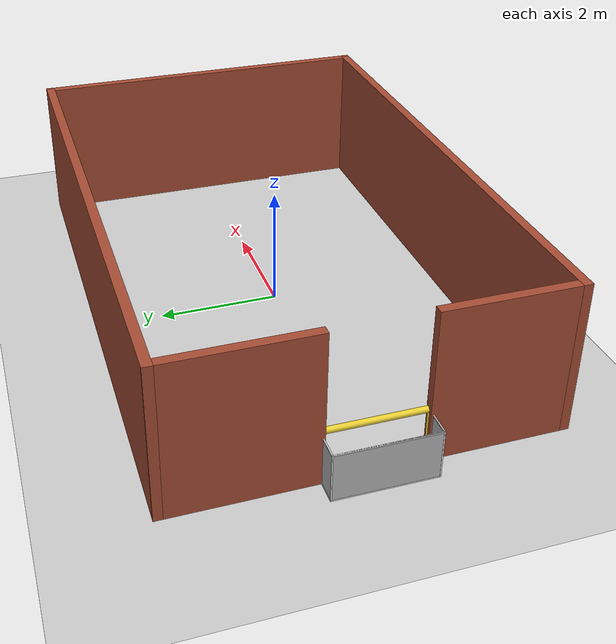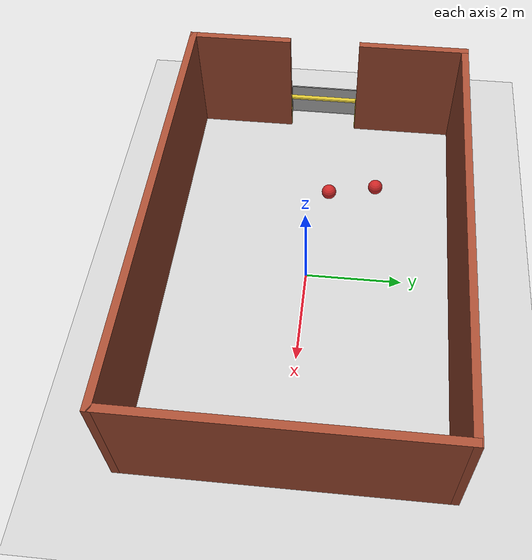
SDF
<sdf version="1.6">
 <world name="default">
  <model name="ground_plane">
   <static>1</static>
   <link name="link">
    <collision name="collision">
     <geometry><plane><normal>0 0 1</normal><size>100 100</size></plane></geometry>
     <surface><friction><ode><mu>100</mu><mu2>50</mu2></ode></friction></surface>
    </collision>
    <visual name="visual">
     <cast_shadows>0</cast_shadows>
     <geometry><plane><normal>0 0 1</normal><size>100 100</size></plane></geometry>
     <material>
      <script><uri>file://media/materials/scripts/gazebo.material</uri><name>Gazebo/Grey</name></script>
     </material>
    </visual>
   </link>
  </model>
  <gravity>0 0 -9.8</gravity>
  <magnetic_field>6e-06 2.3e-05 -4.2e-05</magnetic_field>
  <atmosphere type="adiabatic"/>
  <physics name="default_physics" default="0" type="ode">
   <max_step_size>0.001</max_step_size>
   <real_time_factor>1</real_time_factor>
   <real_time_update_rate>1000</real_time_update_rate>
  </physics>
  <scene><ambient>0.4 0.4 0.4 1</ambient><background>0.7 0.7 0.7 1</background><shadows>0</shadows></scene>
  <spherical_coordinates>
   <surface_model>EARTH_WGS84</surface_model>
   <latitude_deg>0</latitude_deg>
   <longitude_deg>0</longitude_deg>
   <elevation>0</elevation>
   <heading_deg>0</heading_deg>
  </spherical_coordinates>
  <model name="RoboCup 2014 SPL Goal">
   <static>1</static>
   <link name="left_post">
    <pose>0 0.8 0.45 0 -0 0</pose>
    <collision name="collision">
     <geometry><cylinder><radius>0.05</radius><length>0.9</length></cylinder></geometry>
    </collision>
    <visual name="visual">
     <geometry><cylinder><radius>0.05</radius><length>0.9</length></cylinder></geometry>
     <material>
      <script><uri>file://media/materials/scripts/gazebo.material</uri><name>Gazebo/ZincYellow</name></script>
     </material>
    </visual>
   </link>
   <link name="left_support_horiz_lower">
    <pose>0.24 0.8 0.01 0 -0 0</pose>
    <collision name="collision"><geometry><box><size>0.38 0.02 0.02</size></box></geometry></collision>
    <visual name="visual">
     <geometry><box><size>0.38 0.02 0.02</size></box></geometry>
     <material>
      <script><uri>file://media/materials/scripts/gazebo.material</uri><name>Gazebo/White</name></script>
     </material>
    </visual>
   </link>
   <link name="left_support_horiz_upper">
    <pose>0.24 0.8 0.79 0 -0 0</pose>
    <collision name="collision"><geometry><box><size>0.38 0.02 0.02</size></box></geometry></collision>
    <visual name="visual">
     <geometry><box><size>0.38 0.02 0.02</size></box></geometry>
     <material>
      <script><uri>file://media/materials/scripts/gazebo.material</uri><name>Gazebo/White</name></script>
     </material>
    </visual>
   </link>
   <link name="left_support_vertical">
    <pose>0.44 0.8 0.4 3.14159 1.57079 3.14159</pose>
    <collision name="collision"><geometry><box><size>0.8 0.02 0.02</size></box></geometry></collision>
    <visual name="visual">
     <geometry><box><size>0.8 0.02 0.02</size></box></geometry>
     <material>
      <script><uri>file://media/materials/scripts/gazebo.material</uri><name>Gazebo/White</name></script>
     </material>
    </visual>
   </link>
   <link name="right_support_horiz_lower">
    <pose>0.24 -0.8 0.01 0 -0 0</pose>
    <collision name="collision"><geometry><box><size>0.38 0.02 0.02</size></box></geometry></collision>
    <visual name="visual">
     <geometry><box><size>0.38 0.02 0.02</size></box></geometry>
     <material>
      <script><uri>file://media/materials/scripts/gazebo.material</uri><name>Gazebo/White</name></script>
     </material>
    </visual>
   </link>
   <link name="right_support_horiz_upper">
    <pose>0.24 -0.8 0.79 0 -0 0</pose>
    <collision name="collision"><geometry><box><size>0.38 0.02 0.02</size></box></geometry></collision>
    <visual name="visual">
     <geometry><box><size>0.38 0.02 0.02</size></box></geometry>
     <material>
      <script><uri>file://media/materials/scripts/gazebo.material</uri><name>Gazebo/White</name></script>
     </material>
    </visual>
   </link>
   <link name="right_support_vertical">
    <pose>0.44 -0.8 0.4 3.14159 1.57079 3.14159</pose>
    <collision name="collision"><geometry><box><size>0.8 0.02 0.02</size></box></geometry></collision>
    <visual name="visual">
     <geometry><box><size>0.8 0.02 0.02</size></box></geometry>
     <material>
      <script><uri>file://media/materials/scripts/gazebo.material</uri><name>Gazebo/White</name></script>
     </material>
    </visual>
   </link>
   <link name="center_support_horiz_lower">
    <pose>0.44 0 0.01 3.14159 1.57079 3.14159</pose>
    <collision name="collision">
     <geometry><box><size>0.02 1.58 0.02</size></box></geometry>
     <surface>
      <contact>
       <ode><soft_cfm>100000</soft_cfm><soft_erp>100000</soft_erp><kp>1e+06</kp><kd>100000</kd></ode>
      </contact>
     </surface>
    </collision>
    <visual name="visual">
     <geometry><box><size>0.02 1.58 0.02</size></box></geometry>
     <material>
      <script><uri>file://media/materials/scripts/gazebo.material</uri><name>Gazebo/White</name></script>
     </material>
    </visual>
   </link>
   <link name="center_support_horiz_upper">
    <pose>0.44 0 0.79 3.14159 1.57079 3.14159</pose>
    <collision name="collision"><geometry><box><size>0.02 1.58 0.02</size></box></geometry></collision>
    <visual name="visual">
     <geometry><box><size>0.02 1.58 0.02</size></box></geometry>
     <material>
      <script><uri>file://media/materials/scripts/gazebo.material</uri><name>Gazebo/White</name></script>
     </material>
    </visual>
   </link>
   <link name="right_post">
    <pose>0 -0.8 0.45 0 -0 0</pose>
    <collision name="collision">
     <geometry><cylinder><radius>0.05</radius><length>0.9</length></cylinder></geometry>
    </collision>
    <visual name="visual">
     <geometry><cylinder><radius>0.05</radius><length>0.9</length></cylinder></geometry>
     <material>
      <script><uri>file://media/materials/scripts/gazebo.material</uri><name>Gazebo/ZincYellow</name></script>
     </material>
    </visual>
   </link>
   <link name="crossbar">
    <pose>0 0 0.85 1.57 1.57 0</pose>
    <collision name="collision">
     <geometry><cylinder><radius>0.05</radius><length>1.5</length></cylinder></geometry>
    </collision>
    <visual name="visual">
     <geometry><cylinder><radius>0.05</radius><length>1.5</length></cylinder></geometry>
     <material>
      <script><uri>file://media/materials/scripts/gazebo.material</uri><name>Gazebo/ZincYellow</name></script>
     </material>
    </visual>
   </link>
   <link name="center_net">
    <pose>0.44 0 0.4 0 -0 0</pose>
    <collision name="collision">
     <geometry><box><size>0.01 1.6 0.8</size></box></geometry>
     <surface>
      <contact>
       <ode><soft_cfm>100000</soft_cfm><soft_erp>100000</soft_erp><kp>1e+06</kp><kd>100000</kd></ode>
      </contact>
     </surface>
    </collision>
    <visual name="visual">
     <geometry><box><size>0.01 1.6 0.8</size></box></geometry>
     <material>
      <script>
       <uri>model://robocup09_spl_field/materials/scripts/</uri>
       <uri>model://robocup09_spl_field/materials/textures/</uri>
       <name>RoboCup/Net</name>
      </script>
     </material>
    </visual>
   </link>
   <link name="left_net">
    <pose>0.24 0.8 0.4 0 -0 0</pose>
    <collision name="collision"><geometry><box><size>0.38 0.01 0.76</size></box></geometry></collision>
    <visual name="visual">
     <geometry><box><size>0.38 0.01 0.76</size></box></geometry>
     <material>
      <script>
       <uri>model://robocup09_spl_field/materials/scripts/</uri>
       <uri>model://robocup09_spl_field/materials/textures/</uri>
       <name>RoboCup/Net</name>
      </script>
     </material>
    </visual>
   </link>
   <link name="right_net">
    <pose>0.24 -0.8 0.4 0 -0 0</pose>
    <collision name="collision"><geometry><box><size>0.38 0.01 0.76</size></box></geometry></collision>
    <visual name="visual">
     <geometry><box><size>0.38 0.01 0.76</size></box></geometry>
     <material>
      <script>
       <uri>model://robocup09_spl_field/materials/scripts/</uri>
       <uri>model://robocup09_spl_field/materials/textures/</uri>
       <name>RoboCup/Net</name>
      </script>
     </material>
    </visual>
   </link>
   <pose>-4.5222 -0.019926 0 0 -0 3.13789</pose>
  </model>
  <model name="football_field">
   <pose>-0.014 0.048741 0 0 -0 0</pose>
   <link name="Wall_10">
    <collision name="Wall_10_Collision">
     <geometry><box><size>6.13435 0.15 2.5</size></box></geometry>
     <pose>0 0 1.25 0 -0 0</pose>
    </collision>
    <visual name="Wall_10_Visual">
     <pose>0 0 1.25 0 -0 0</pose>
     <geometry><box><size>6.13435 0.15 2.5</size></box></geometry>
     <material>
      <script><uri>file://media/materials/scripts/gazebo.material</uri><name>Gazebo/Bricks</name></script>
      <ambient>1 1 1 1</ambient>
     </material>
    </visual>
    <pose>4.526 -0.011567 0 0 -0 1.5708</pose>
   </link>
   <link name="Wall_14">
    <collision name="Wall_14_Collision">
     <geometry><box><size>9.202 0.15 2.5</size></box></geometry>
     <pose>0 0 1.25 0 -0 0</pose>
    </collision>
    <visual name="Wall_14_Visual">
     <pose>0 0 1.25 0 -0 0</pose>
     <geometry><box><size>9.202 0.15 2.5</size></box></geometry>
     <material>
      <script><uri>file://media/materials/scripts/gazebo.material</uri><name>Gazebo/Bricks</name></script>
      <ambient>1 1 1 1</ambient>
     </material>
    </visual>
    <pose>0 3.0035 0 0 0 -3.14154</pose>
   </link>
   <link name="Wall_16">
    <collision name="Wall_16_Collision">
     <geometry><box><size>2.38 0.15 2.5</size></box></geometry>
     <pose>0 0 1.25 0 -0 0</pose>
    </collision>
    <visual name="Wall_16_Visual">
     <pose>0 0 1.25 0 -0 0</pose>
     <geometry><box><size>2.38 0.15 2.5</size></box></geometry>
     <material>
      <script><uri>file://media/materials/scripts/gazebo.material</uri><name>Gazebo/Bricks</name></script>
      <ambient>1 1 1 1</ambient>
     </material>
    </visual>
    <pose>-4.526 1.88826 0 0 0 -1.5708</pose>
   </link>
   <link name="Wall_6">
    <collision name="Wall_6_Collision">
     <geometry><box><size>9.20264 0.15 2.5</size></box></geometry>
     <pose>0 0 1.25 0 -0 0</pose>
    </collision>
    <visual name="Wall_6_Visual">
     <pose>0 0 1.25 0 -0 0</pose>
     <geometry><box><size>9.20264 0.15 2.5</size></box></geometry>
     <material>
      <script><uri>file://media/materials/scripts/gazebo.material</uri><name>Gazebo/Bricks</name></script>
      <ambient>1 1 1 1</ambient>
     </material>
    </visual>
    <pose>0 -3.00374 0 0 -0 0</pose>
   </link>
   <link name="Wall_8">
    <collision name="Wall_8_Collision">
     <geometry><box><size>2.25 0.15 2.5</size></box></geometry>
     <pose>0 0 1.25 0 -0 0</pose>
    </collision>
    <visual name="Wall_8_Visual">
     <pose>0 0 1.25 0 -0 0</pose>
     <geometry><box><size>2.25 0.15 2.5</size></box></geometry>
     <material>
      <script><uri>file://media/materials/scripts/gazebo.material</uri><name>Gazebo/Bricks</name></script>
      <ambient>1 1 1 1</ambient>
     </material>
    </visual>
    <pose>-4.52604 -1.95355 0 0 -0 1.57083</pose>
   </link>
   <static>1</static>
  </model>
  <model name="RoboCup SPL Ball">
   <static>0</static>
   <link name="ball">
    <inertial>
     <mass>0.0056</mass>
     <inertia>
      <ixx>2.37e-06</ixx>
      <iyy>2.37e-06</iyy>
      <izz>2.37e-06</izz>
      <ixy>0</ixy>
      <ixz>0</ixz>
      <iyz>0</iyz>
     </inertia>
    </inertial>
    <collision name="collision"><geometry><sphere><radius>0.1625</radius></sphere></geometry></collision>
    <visual name="visual">
     <geometry><sphere><radius>0.1625</radius></sphere></geometry>
     <material>
      <script><uri>file://media/materials/scripts/gazebo.material</uri><name>Gazebo/RedBright</name></script>
     </material>
     <cast_shadows>0</cast_shadows>
    </visual>
   </link>
   <pose>-2.46107 1.34043 0.1725 0 -0 0</pose>
  </model>
  <model name="RoboCup SPL Ball_0">
   <static>0</static>
   <link name="ball">
    <inertial>
     <mass>0.0056</mass>
     <inertia>
      <ixx>2.37e-06</ixx>
      <iyy>2.37e-06</iyy>
      <izz>2.37e-06</izz>
      <ixy>0</ixy>
      <ixz>0</ixz>
      <iyz>0</iyz>
     </inertia>
    </inertial>
    <collision name="collision"><geometry><sphere><radius>0.1625</radius></sphere></geometry></collision>
    <visual name="visual">
     <geometry><sphere><radius>0.1625</radius></sphere></geometry>
     <material>
      <script><uri>file://media/materials/scripts/gazebo.material</uri><name>Gazebo/RedBright</name></script>
     </material>
    </visual>
   </link>
   <pose>-2.2223 0.307759 0.1725 0 -0 0</pose>
  </model>
  <light name="sun_0" type="directional">
   <pose>0.04849 0.007467 10 0 -0 0</pose>
   <diffuse>0.8 0.8 0.8 1</diffuse>
   <specular>0.1 0.1 0.1 1</specular>
   <attenuation>
    <range>1000</range>
    <constant>0.9</constant>
    <linear>0.01</linear>
    <quadratic>0.001</quadratic>
   </attenuation>
   <direction>-0.5 0.5 -1</direction>
  </light>
  <light name="user_directional_light_0" type="directional">
   <pose>-1.29872 1.8179 1 0 -0 0</pose>
   <diffuse>0.5 0.5 0.5 1</diffuse>
   <specular>0.1 0.1 0.1 1</specular>
   <direction>0.1 0.1 -0.9</direction>
   <attenuation>
    <range>20</range>
    <constant>0.5</constant>
    <linear>0.01</linear>
    <quadratic>0.001</quadratic>
   </attenuation>
  </light>
 </world>
</sdf>
